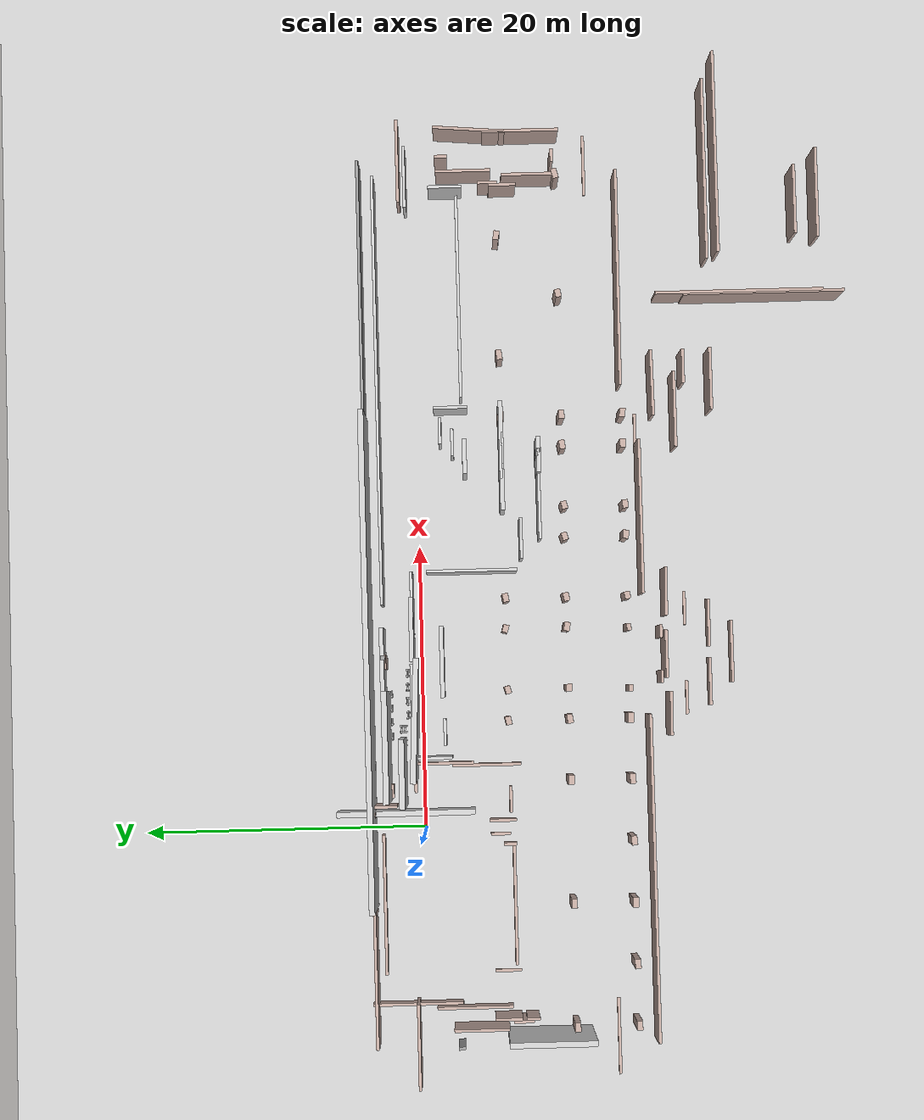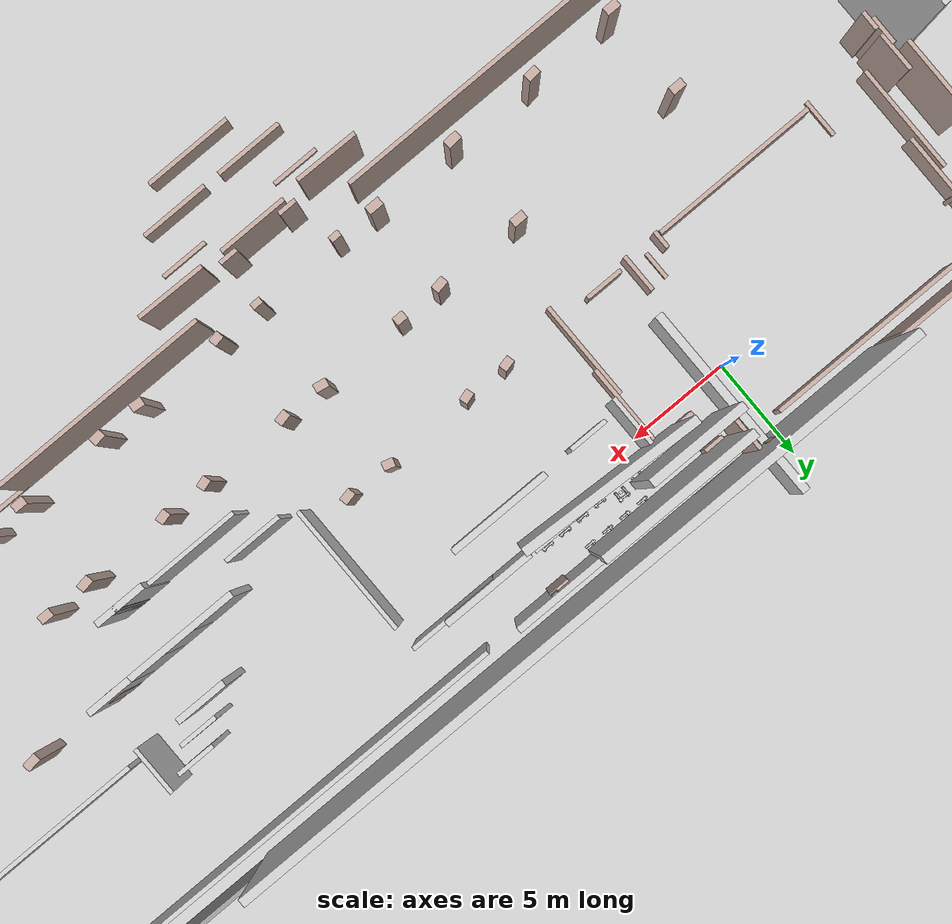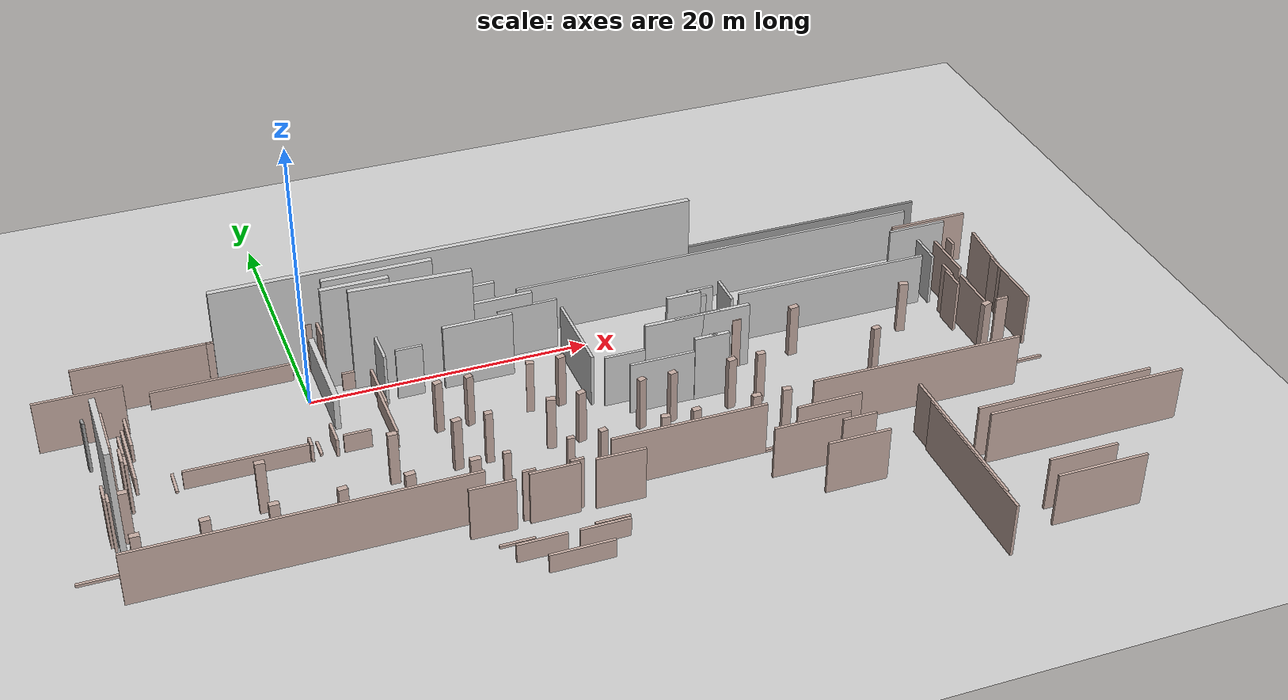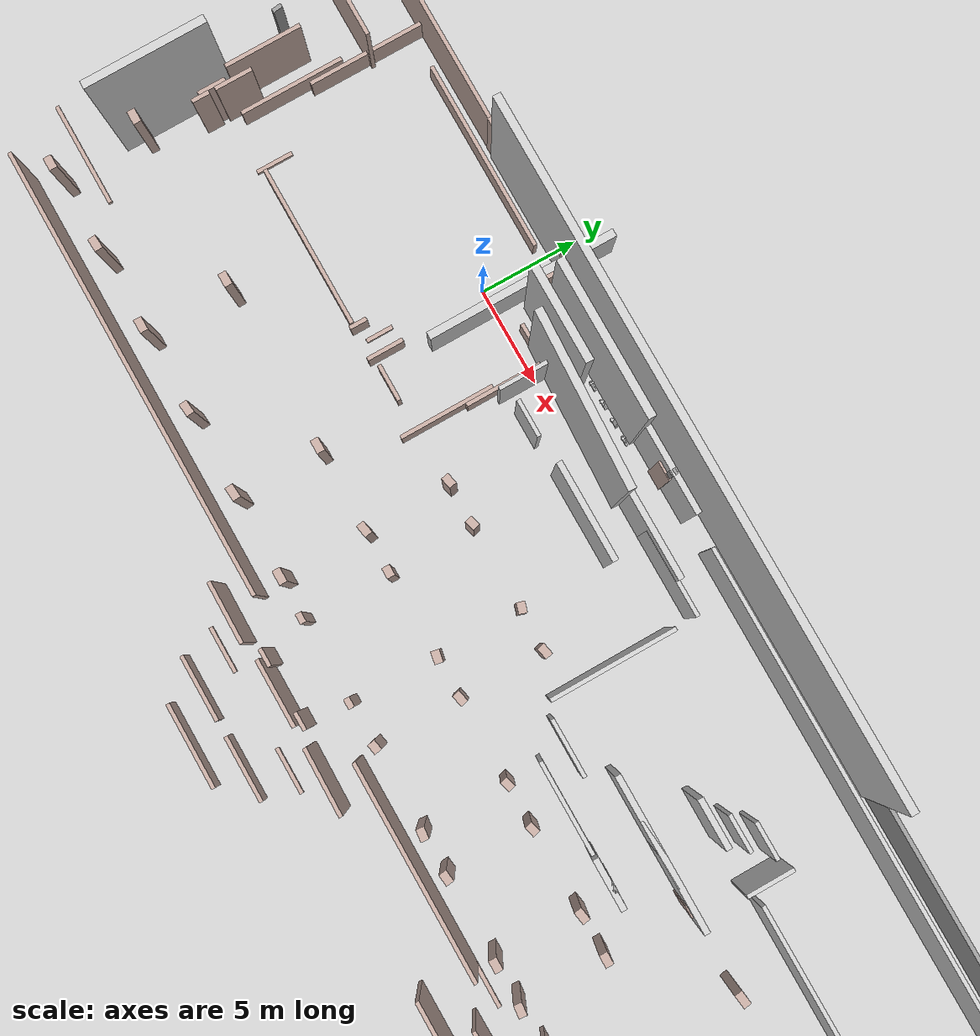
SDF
<?xml version='1.0'?>
<sdf version='1.6'>
  <world name='default'>
    <physics name='1ms' type='ignored'>
      <max_step_size>0.001</max_step_size>
      <real_time_factor>1.0</real_time_factor>
    </physics>
    <plugin filename='gz-sim-physics-system' name='gz::sim::systems::Physics'>
    </plugin>
    <plugin filename='gz-sim-user-commands-system' name='gz::sim::systems::UserCommands'>
    </plugin>
    <plugin filename='gz-sim-scene-broadcaster-system' name='gz::sim::systems::SceneBroadcaster'>
    </plugin>
    <scene>
      <ambient>1.0 1.0 1.0</ambient>
      <background>0.8 0.8 0.8</background>
      <sky></sky>
    </scene>
    <light type='directional' name='sun'>
      <cast_shadows>true</cast_shadows>
      <pose>0 0 10 0 0 0</pose>
      <diffuse>0.5 0.5 0.5 1</diffuse>
      <specular>0.2 0.2 0.2 1</specular>
      <direction>-0.5 0.1 -0.9</direction>
      <attenuation>
        <range>1000</range>
        <constant>0.9</constant>
        <linear>0.01</linear>
        <quadratic>0.001</quadratic>
      </attenuation>
    </light>
    <model name='ground_plane'>
      <static>true</static>
      <link name='link'>
        <collision name='collision'>
          <geometry>
            <plane>
              <normal>0 0 1</normal>
              <size>400 400</size>
            </plane>
          </geometry>
        </collision>
        <visual name='visual'>
          <geometry>
            <plane>
              <normal>0 0 1</normal>
              <size>400 400</size>
            </plane>
          </geometry>
          <material>
            <ambient>0.8 0.8 0.8 1</ambient>
            <diffuse>0.8 0.8 0.8 1</diffuse>
            <specular>0.8 0.8 0.8 1</specular>
          </material>
        </visual>
      </link>
    </model>

    <!-- Include Gedung P building model with corrected offset -->
    <include>
      <uri>file:///home/nuby/bcr_ws/src/bcr_bot/models/gedung_p/model.sdf</uri>
      <pose>17.79816 -12.54414 0 0 0 0</pose>
    </include>

    <!-- Front Side Chairs (kursi_corak) -->
    <!-- Horizontal line of 4 chairs -->
    <include>
      <uri>model://kursi_corak</uri>
      <pose>8.0 1.0 0 0 0 0</pose>
    </include>
    <include>
      <uri>model://kursi_corak</uri>
      <pose>9.0 1.0 0 0 0 0</pose>
    </include>
    <include>
      <uri>model://kursi_corak</uri>
      <pose>10.0 1.0 0 0 0 0</pose>
    </include>
    <include>
      <uri>model://kursi_corak</uri>
      <pose>11.0 1.0 0 0 0 0</pose>
    </include>

    <!-- Additional chairs in front area -->
    <include>
      <uri>model://kursi_corak</uri>
      <pose>6.0 1.5 0 0 0 0</pose>
    </include>
    <include>
      <uri>model://kursi_corak</uri>
      <pose>7.0 1.5 0 0 0 0</pose>
    </include>

    <!-- Rotated chairs at y=2.5 -->
    <include>
      <uri>model://kursi_corak</uri>
      <pose>6.5 2.5 0 0 0 1.57</pose>
    </include>
    <include>
      <uri>model://kursi_corak</uri>
      <pose>7.5 2.5 0 0 0 1.57</pose>
    </include>
    <include>
      <uri>model://kursi_corak</uri>
      <pose>8.5 2.5 0 0 0 1.57</pose>
    </include>
    <include>
      <uri>model://kursi_corak</uri>
      <pose>9.5 2.5 0 0 0 1.57</pose>
    </include>
  </world>
</sdf>

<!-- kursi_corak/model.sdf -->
<sdf version='1.6'>
  <model name='kursi_corak'>
    <link name='link_3'>
      <inertial>
        <mass>1</mass>
        <inertia>
          <ixx>0.166667</ixx>
          <ixy>0</ixy>
          <ixz>0</ixz>
          <iyy>0.166667</iyy>
          <iyz>0</iyz>
          <izz>0.166667</izz>
        </inertia>
        <pose frame=''>0 0 0 0 -0 0</pose>
      </inertial>
      <pose frame=''>0 0 0 0 -0 0</pose>
      <gravity>1</gravity>
      <self_collide>0</self_collide>
      <kinematic>0</kinematic>
      <enable_wind>0</enable_wind>
      <visual name='visual'>
        <pose frame=''>0 0 0 0 -0 0</pose>
        <geometry>
          <mesh>
            <uri>meshes/kursi corak.dae</uri>
            <scale>0.15 0.15 0.15</scale>
          </mesh>
        </geometry>
        <material>
          <lighting>1</lighting>
          <ambient>0.8 0.8 0.8 1</ambient>
          <diffuse>0.8 0.8 0.8 1</diffuse>
          <specular>0.2 0.2 0.2 1</specular>
        </material>
        <transparency>0</transparency>
        <cast_shadows>1</cast_shadows>
      </visual>
      <collision name='collision'>
        <laser_retro>0</laser_retro>
        <max_contacts>10</max_contacts>
        <pose frame=''>0 0 0 0 -0 0</pose>
        <geometry>
          <mesh>
            <uri>meshes/kursi corak.dae</uri>
            <scale>0.15 0.15 0.15</scale>
          </mesh>
        </geometry>
        <surface>
          <friction>
            <ode>
              <mu>1</mu>
              <mu2>1</mu2>
              <fdir1>0 0 0</fdir1>
              <slip1>0</slip1>
              <slip2>0</slip2>
            </ode>
            <torsional>
              <coefficient>1</coefficient>
              <patch_radius>0</patch_radius>
              <surface_radius>0</surface_radius>
              <use_patch_radius>1</use_patch_radius>
              <ode>
                <slip>0</slip>
              </ode>
            </torsional>
          </friction>
          <bounce>
            <restitution_coefficient>0</restitution_coefficient>
            <threshold>1e+06</threshold>
          </bounce>
          <contact>
            <collide_without_contact>0</collide_without_contact>
            <collide_without_contact_bitmask>1</collide_without_contact_bitmask>
            <collide_bitmask>1</collide_bitmask>
            <ode>
              <soft_cfm>0</soft_cfm>
              <soft_erp>0.2</soft_erp>
              <kp>1e+13</kp>
              <kd>1</kd>
              <max_vel>0.01</max_vel>
              <min_depth>0</min_depth>
            </ode>
            <bullet>
              <split_impulse>1</split_impulse>
              <split_impulse_penetration_threshold>-0.01</split_impulse_penetration_threshold>
              <soft_cfm>0</soft_cfm>
              <soft_erp>0.2</soft_erp>
              <kp>1e+13</kp>
              <kd>1</kd>
            </bullet>
          </contact>
        </surface>
      </collision>
    </link>
    <static>0</static>
    <allow_auto_disable>1</allow_auto_disable>
  </model>
</sdf>
